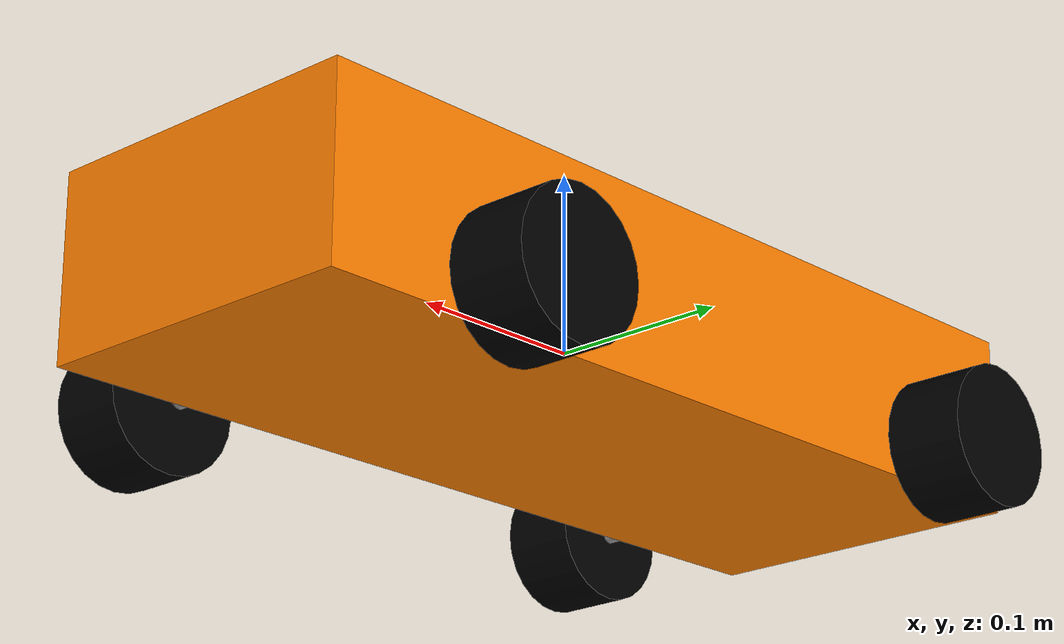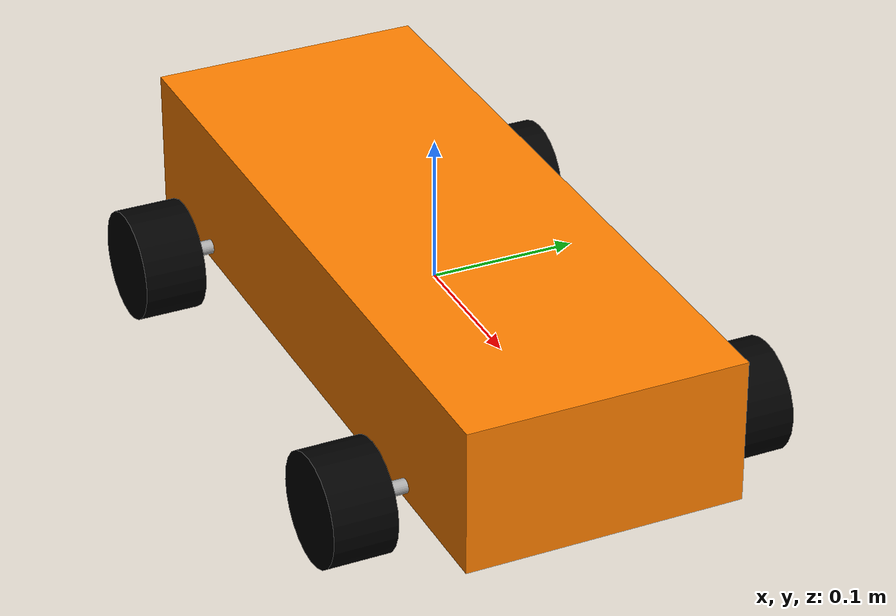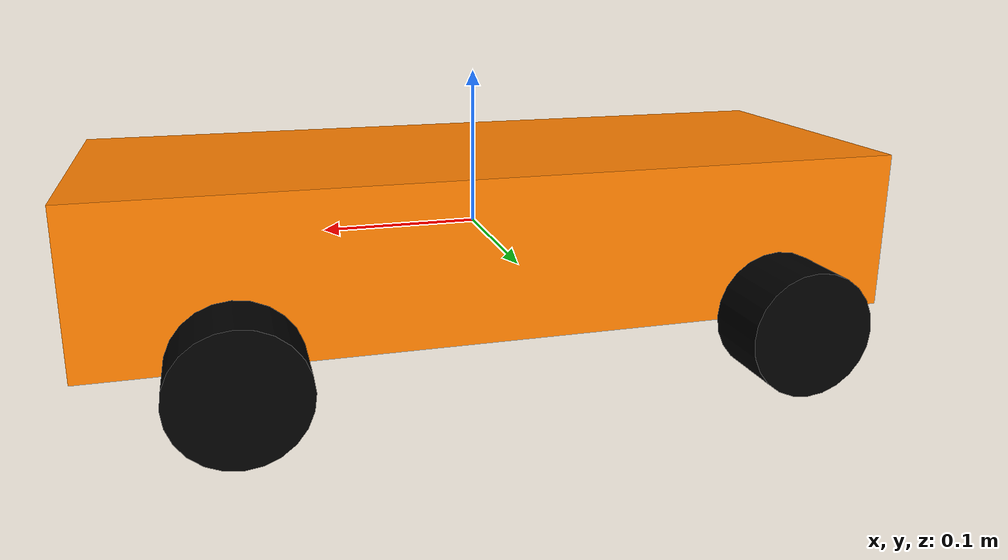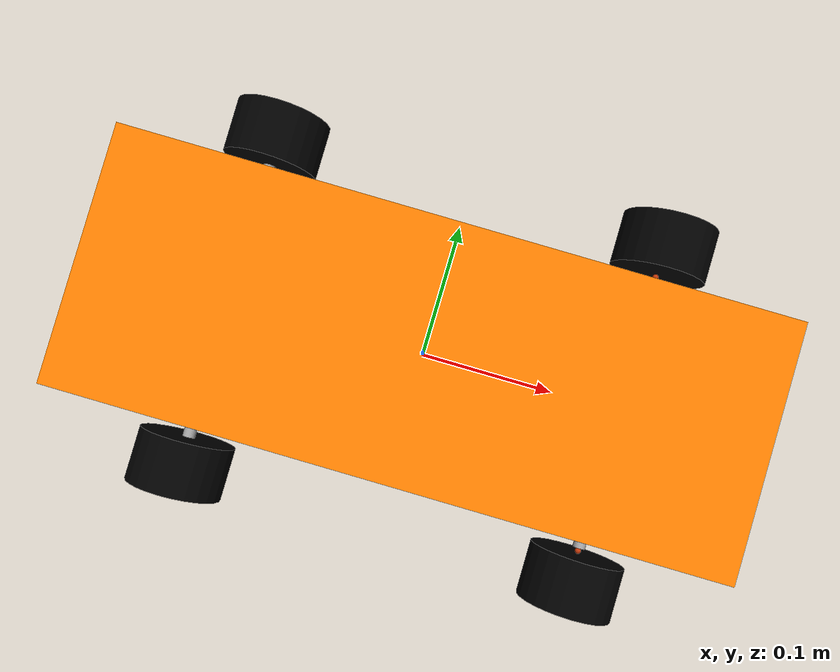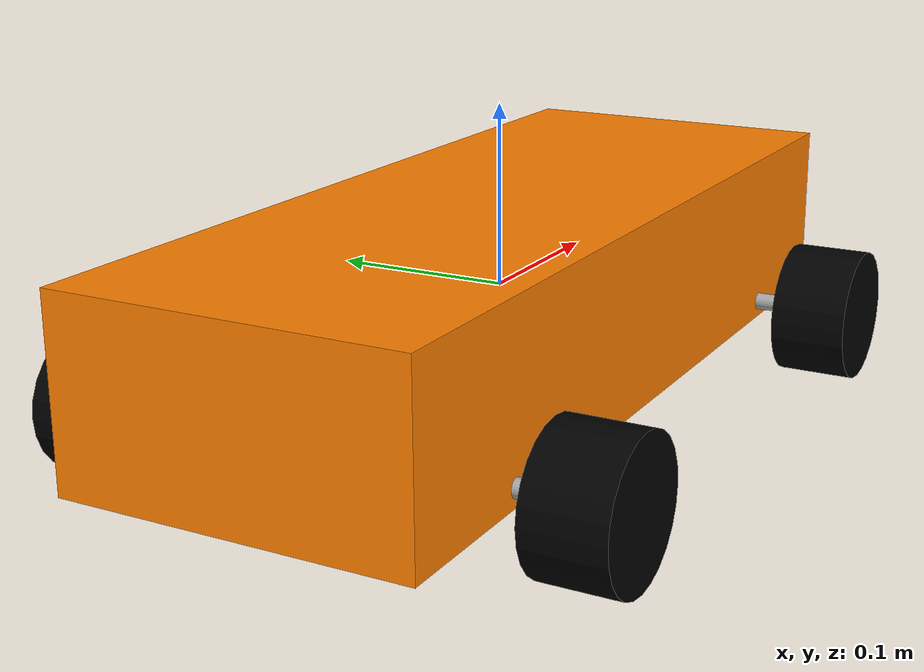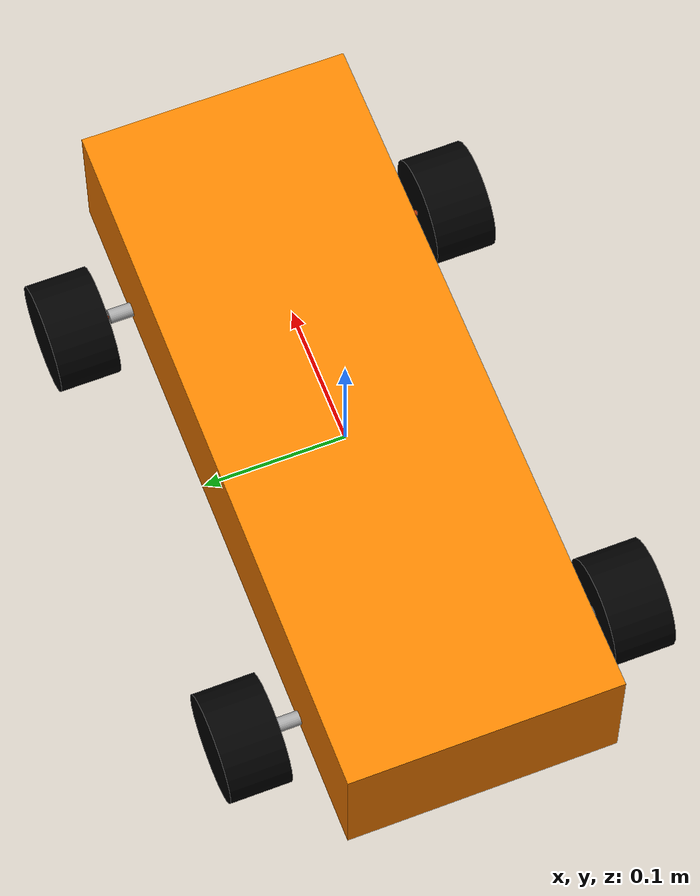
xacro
<?xml version="1.0"?>
<robot name="f1tenth_model" xmlns:xacro="http://www.ros.org/wiki/xacro">

    <xacro:property name="wheelbase" value="0.324"/>
    <xacro:property name="chassis_length" value="0.5" />
    <xacro:property name="chassis_width" value="0.18964" />
    <xacro:property name="chassis_height" value="0.10" />
    <xacro:property name="chassis_mass" value="3.44" />
    <xacro:property name="wheel_mass" value="0.075" />
    <xacro:property name="wheel_radius" value="0.0381" />
    <xacro:property name="wheel_length" value="0.04318" />
    <xacro:property name="tire_thickness" value="0.012" />
    <xacro:property name="arm_length" value="0.019" />
    <xacro:property name="arm_radius" value="0.005" />
    <xacro:property name="arm_mass" value="0.005" />
    <xacro:property name="knuckle_radius" value="0.0025" />
    <xacro:property name="knuckle_mass" value="${arm_mass * (arm_length - knuckle_radius) / arm_length}" />
    <xacro:property name="max_steering_angle" value="0.6" />
    <xacro:property name="max_steering_angular_velocity" value="2.0" />
    <xacro:property name="max_wheel_angular_velocity" value="20.0"/>
    <xacro:property name="wheel_mu" value="1.5" />
    <xacro:property name="chassis_mu" value="0.1" />

    <material name="papaya orange">
        <color rgba="1.0 ${128 / 255} 0.0 1.0" />
    </material>

    <material name="tire color">
        <color rgba="0.0 0.0 0.0 1.0" />
    </material>

    <material name="steering link color">
        <color rgba="${189 / 255} ${55 / 255} ${10 / 255} 1.0" />
    </material>

    <material name="steering arm color">
        <color rgba="${166 / 255} ${166 / 255} ${166 / 255} 1.0" />
    </material>

    <xacro:macro name="box_inertial" params="mass length width height">
        <inertial>
                <mass value="${mass}" />
                <inertia ixx="${1 / 12 * mass * (width * width + height * height)}" ixy="0.0" ixz="0.0"
                        iyy="${1 / 12 * mass * (length * length + height * height)}" iyz="0.0"
                        izz="${1 / 12 * mass * (length * length + width * width)}" />
        </inertial>
    </xacro:macro>

    <xacro:macro name="cylinder_geometry" params="length radius">
        <geometry>
            <cylinder length="${length}" radius="${radius}"/>
        </geometry>
    </xacro:macro>

    <!-- dummy link cuz KDL doesn't support a root link with inertia???? idfk -->
    <link name="base_link"/>

    <joint name="dummy_to_chassis" type="fixed" >
        <parent link="base_link" />
        <child link="chassis" />
    </joint>

    <link name="chassis">
        <visual>
            <geometry>
                <box size="${chassis_length} ${chassis_width} ${chassis_height}"/>
            </geometry>
            <material name="papaya orange" />
        </visual>
        <collision>
            <geometry>
                <box size="${chassis_length} ${chassis_width} ${chassis_height}"/>
            </geometry>
        </collision>
        <xacro:box_inertial mass="${chassis_mass}" length="${chassis_length}" width="${chassis_width}" height="${chassis_height}" />
    </link>

    <xacro:macro name="tire_inertial" params="mass outer_radius inner_radius width">
        <inertial>
            <origin xyz="0 0 0" rpy="${pi/2} 0 0" />
            <mass value="${mass}" />
            <inertia ixx="${1 / 12 * mass * (3 * (outer_radius * outer_radius + inner_radius * inner_radius) + width * width)}" ixy="0.0" ixz="0.0"
                    iyy="${1 / 12 * mass * (3 * (outer_radius * outer_radius + inner_radius * inner_radius) + width * width)}" iyz="0.0"
                    izz="${1 / 2 * mass * (outer_radius * outer_radius + inner_radius * inner_radius)}" />
        </inertial>
    </xacro:macro>

    <xacro:macro name="wheel" params="prefix mass radius length">
        <link name="${prefix}_wheel">
            <visual>
                <xacro:cylinder_geometry length="${length}" radius="${radius}" />
                <material name="tire color"/>
                <origin xyz="0 0 0" rpy="${pi/2} 0 0" />
            </visual>
            <collision>
                <xacro:cylinder_geometry length="${length}" radius="${radius}" />
                <origin xyz="0 0 0" rpy="${pi/2} 0 0" />
            </collision>
            <xacro:tire_inertial mass="${mass}" outer_radius="${radius}" inner_radius="${radius - tire_thickness}" width="${length}" />
        </link>
    </xacro:macro>

    <!-- Wheel definitions  -->
    <xacro:wheel prefix="front_left" mass="${wheel_mass}" radius="${wheel_radius}" length="${wheel_length}" />
    <xacro:wheel prefix="front_right" mass="${wheel_mass}" radius="${wheel_radius}" length="${wheel_length}" />
    <xacro:wheel prefix="back_left" mass="${wheel_mass}" radius="${wheel_radius}" length="${wheel_length}" />
    <xacro:wheel prefix="back_right" mass="${wheel_mass}" radius="${wheel_radius}" length="${wheel_length}" />

    <xacro:macro name="arm_inertial" params="mass radius length">
        <inertial>
            <origin xyz="0 0 0" rpy="${pi/2} 0 0" />
            <mass value="${mass}" />
            <inertia ixx="${1 / 12 * mass * (3 * radius * radius + length * length)}" ixy="0.0" ixz="0.0"
                        iyy="${1 / 12 * mass * (3 * radius * radius + length * length)}" iyz="0.0"
                        izz="${1 / 2 * mass * radius * radius}" />
        </inertial>
    </xacro:macro>

    <xacro:macro name="arm" params="prefix mass radius length">
        <link name="${prefix}_arm">
            <visual>
                <xacro:cylinder_geometry length="${length}" radius="${radius}" />
                <material name="steering arm color"/>
                <origin xyz="0 0 0" rpy="${pi/2} 0 0" />
            </visual>
            <collision>
                <xacro:cylinder_geometry length="${length}" radius="${radius}" />
            </collision>
            <origin xyz="0 0 0" rpy="${pi/2} 0 0" />
            <xacro:arm_inertial mass="${mass}" radius="${radius}" length="${length}" />
        </link>
    </xacro:macro>

    <!-- Wheel Arm definitions -->
    <xacro:arm prefix="front_left" mass="${arm_mass - knuckle_mass}" radius="${arm_radius}" length="${arm_length - knuckle_radius}" />
    <xacro:arm prefix="front_right" mass="${arm_mass - knuckle_mass}" radius="${arm_radius}" length="${arm_length - knuckle_radius}" />
    <xacro:arm prefix="back_left" mass="${arm_mass}" radius="${arm_radius}" length="${arm_length}" />
    <xacro:arm prefix="back_right" mass="${arm_mass}" radius="${arm_radius}" length="${arm_length}" />

    <xacro:macro name="sphere_inertial" params="mass radius">
        <inertial>
                <mass value="${mass}" />
                <inertia ixx="${2 / 5 * mass * radius * radius}" ixy="0.0" ixz="0.0"
                        iyy="${2 / 5 * mass * radius * radius}" iyz="0.0"
                        izz="${2 / 5 * mass * radius * radius}" />
        </inertial>
    </xacro:macro>

    <xacro:macro name="steering" params="prefix mass radius">
        <link name="${prefix}_steering_knuckle">
            <visual>
                <geometry>
                    <sphere radius="${radius}"/>
                </geometry>
                <material name="steering link color"/>
            </visual>
            <collision>
                <geometry>
                    <sphere radius="${radius}"/>
                </geometry>
            </collision>
            <xacro:sphere_inertial mass="${knuckle_mass}" radius="${knuckle_radius}" />
        </link>
    </xacro:macro>

    <!-- Steering knuckle definition -->
    <xacro:steering prefix="front_left" mass="${knuckle_mass}" radius="${knuckle_radius}" />
    <xacro:steering prefix="front_right" mass="${knuckle_mass}" radius="${knuckle_radius}" />

    <xacro:macro name="spinning_joint" params="prefix parent y_offset">
        <joint name="${prefix}_spinning" type="continuous">
            <parent link="${prefix}_${parent}" />
            <child link="${prefix}_wheel" />
            <axis xyz="0 1 0" />
            <origin xyz="0 ${y_offset} 0" rpy="0 0 0" />
         </joint>
    </xacro:macro>

    <!-- Wheel Spinning joint definition -->
    <xacro:spinning_joint prefix="front_right" parent="steering_knuckle" y_offset="${-(knuckle_radius + wheel_length / 2)}" />
    <xacro:spinning_joint prefix="front_left" parent="steering_knuckle" y_offset="${knuckle_radius + wheel_length / 2}" />
    <xacro:spinning_joint prefix="back_right" parent="arm" y_offset="${-(arm_length / 2 + wheel_length / 2)}" />
    <xacro:spinning_joint prefix="back_left" parent="arm" y_offset="${arm_length / 2 + wheel_length / 2}" />

    <xacro:macro name="steering_joint" params="prefix y_offset" >
        <joint name="${prefix}_steering" type="revolute">
            <parent link="${prefix}_arm" />
            <child link="${prefix}_steering_knuckle" />
            <axis xyz="0 0 1" />
            <limit lower="${-max_steering_angle}" upper="${max_steering_angle}" effort="10.0" velocity="${max_steering_angular_velocity}"/>
            <origin xyz="0 ${y_offset} 0" rpy="0 0 0" />
        </joint>
    </xacro:macro>

    <!-- Steering joint definitions -->
    <xacro:steering_joint prefix="front_right" y_offset="${-((arm_length - knuckle_radius) / 2 + knuckle_radius)}" />
    <xacro:steering_joint prefix="front_left" y_offset="${(arm_length - knuckle_radius) / 2 + knuckle_radius}" />

    <xacro:macro name="arm_joint" params="prefix x_offset y_offset" >
        <joint name="${prefix}_arm_fixed" type="fixed">
            <parent link="chassis"/>
            <child link="${prefix}_arm"/>
            <origin xyz="${x_offset} ${y_offset} -0.04" rpy="0 0 0" />
        </joint>
    </xacro:macro>

    <!-- Arm to chassis joints -->
    <xacro:arm_joint prefix="front_right" x_offset="${wheelbase / 2}" y_offset="${-((arm_length - knuckle_radius) / 2 + chassis_width / 2)}" />
    <xacro:arm_joint prefix="front_left" x_offset="${wheelbase / 2}" y_offset="${(arm_length - knuckle_radius) / 2 + chassis_width / 2}" />
    <xacro:arm_joint prefix="back_right" x_offset="${-wheelbase / 2}" y_offset="${-(arm_length / 2 + chassis_width / 2)}" />
    <xacro:arm_joint prefix="back_left" x_offset="${-wheelbase / 2}" y_offset="${arm_length / 2 + chassis_width / 2}" />

    <xacro:macro name="ros2_control_steering" params="prefix max_angle">
        <joint name="${prefix}_steering">
            <command_interface  name="position">
                <param name="min">${-max_angle}</param>
                <param name="max">${max_angle}</param>
            </command_interface>
            <state_interface name="velocity"/>
            <state_interface name="position"/>
        </joint>
    </xacro:macro>

    <xacro:macro name="ros2_control_spinning" params="prefix">
        <joint name="${prefix}_spinning">
            <command_interface name="velocity" />
            <state_interface name="velocity"/>
            <state_interface name="position"/>
        </joint>
    </xacro:macro>

    <ros2_control name="GazeboSimSystem" type="system">
        <hardware>
            <plugin>gz_ros2_control/GazeboSimSystem</plugin>
        </hardware>

        <xacro:ros2_control_steering prefix="front_left" max_angle="${max_steering_angle}"/>
        <xacro:ros2_control_steering prefix="front_right" max_angle="${max_steering_angle}"/>
        <xacro:ros2_control_spinning prefix="front_left"/>
        <xacro:ros2_control_spinning prefix="front_right"/>
        <xacro:ros2_control_spinning prefix="back_left"/>
        <xacro:ros2_control_spinning prefix="back_right"/>

    </ros2_control>

    <gazebo>
        <plugin filename="libgz_ros2_control-system.so" name="gz_ros2_control::GazeboSimROS2ControlPlugin">
            <parameters>$(find f1tenth_gz_sim)/config/vehicle_controllers.yaml</parameters>
        </plugin>

    </gazebo>

    <xacro:macro name="gz_friction" params="link mu">
        <gazebo reference="${link}">
            <mu1>${mu}</mu1>
            <mu2>${mu}</mu2>
        </gazebo>
    </xacro:macro>

    <xacro:gz_friction link="front_left_wheel" mu="${wheel_mu}" />
    <xacro:gz_friction link="front_right_wheel" mu="${wheel_mu}" />
    <xacro:gz_friction link="back_left_wheel" mu="${wheel_mu}" />
    <xacro:gz_friction link="back_right_wheel" mu="${wheel_mu}" />

    <xacro:gz_friction link="chassis" mu="${chassis_mu}" />

</robot>
